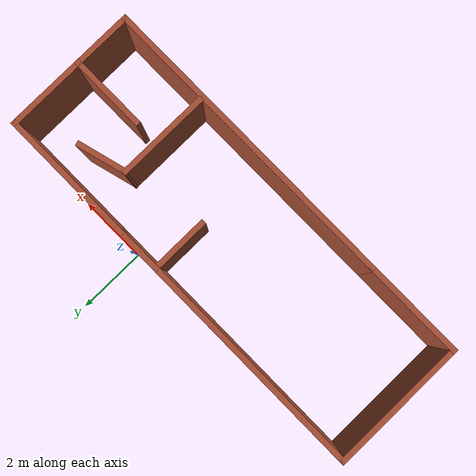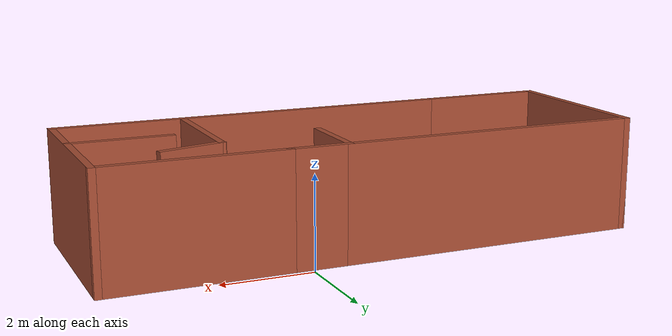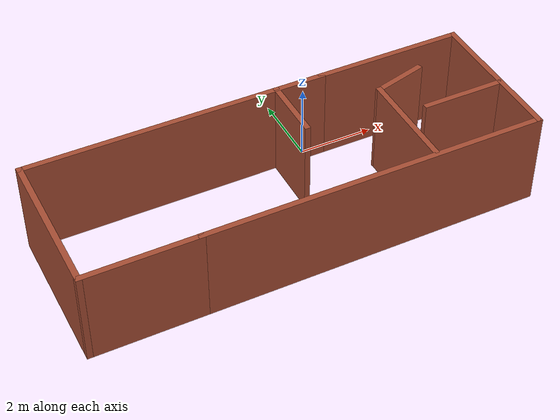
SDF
<?xml version='1.0'?>
<sdf version='1.6'>
  <model name='112'>
    <pose frame=''>-1.57 -2.105 0 0 -0 0</pose>
    <link name='Wall_10'>
      <collision name='Wall_10_Collision'>
        <geometry>
          <box>
            <size>4 0.15 2.5</size>
          </box>
        </geometry>
        <pose frame=''>0 0 1.25 0 -0 0</pose>
      </collision>
      <visual name='Wall_10_Visual'>
        <pose frame=''>0 0 1.25 0 -0 0</pose>
        <geometry>
          <box>
            <size>4 0.15 2.5</size>
          </box>
        </geometry>
        <material>
          <script>
            <uri>file://media/materials/scripts/gazebo.material</uri>
            <name>Gazebo/Bricks</name>
          </script>
          <ambient>1 1 1 1</ambient>
        </material>
      </visual>
      <pose frame=''>5.85 0 0 0 -0 1.5708</pose>
    </link>
    <link name='Wall_12'>
      <collision name='Wall_12_Collision'>
        <geometry>
          <box>
            <size>4 0.15 2.5</size>
          </box>
        </geometry>
        <pose frame=''>0 0 1.25 0 -0 0</pose>
      </collision>
      <visual name='Wall_12_Visual'>
        <pose frame=''>0 0 1.25 0 -0 0</pose>
        <geometry>
          <box>
            <size>4 0.15 2.5</size>
          </box>
        </geometry>
        <material>
          <script>
            <uri>file://media/materials/scripts/gazebo.material</uri>
            <name>Gazebo/Bricks</name>
          </script>
          <ambient>1 1 1 1</ambient>
        </material>
      </visual>
      <pose frame=''>3.925 1.925 0 0 -0 3.14159</pose>
    </link>
    <link name='Wall_13'>
      <collision name='Wall_13_Collision'>
        <geometry>
          <box>
            <size>1.4 0.15 2.5</size>
          </box>
        </geometry>
        <pose frame=''>0 0 1.25 0 -0 0</pose>
      </collision>
      <visual name='Wall_13_Visual'>
        <pose frame=''>0 0 1.25 0 -0 0</pose>
        <geometry>
          <box>
            <size>1.4 0.15 2.5</size>
          </box>
        </geometry>
        <material>
          <script>
            <uri>file://media/materials/scripts/gazebo.material</uri>
            <name>Gazebo/Bricks</name>
          </script>
          <ambient>1 1 1 1</ambient>
        </material>
      </visual>
      <pose frame=''>1.375 1.925 0 0 0 -3.14159</pose>
    </link>
    <link name='Wall_15'>
      <collision name='Wall_15_Collision'>
        <geometry>
          <box>
            <size>2.75 0.15 2.5</size>
          </box>
        </geometry>
        <pose frame=''>0 0 1.25 0 -0 0</pose>
      </collision>
      <visual name='Wall_15_Visual'>
        <pose frame=''>0 0 1.25 0 -0 0</pose>
        <geometry>
          <box>
            <size>2.75 0.15 2.5</size>
          </box>
        </geometry>
        <material>
          <script>
            <uri>file://media/materials/scripts/gazebo.material</uri>
            <name>Gazebo/Bricks</name>
          </script>
          <ambient>1 1 1 1</ambient>
        </material>
      </visual>
      <pose frame=''>3.02 -0.515 0 0 0 -1.5708</pose>
    </link>
    <link name='Wall_17'>
      <collision name='Wall_17_Collision'>
        <geometry>
          <box>
            <size>2.25 0.15 2.5</size>
          </box>
        </geometry>
        <pose frame=''>0 0 1.25 0 -0 0</pose>
      </collision>
      <visual name='Wall_17_Visual'>
        <pose frame=''>0 0 1.25 0 -0 0</pose>
        <geometry>
          <box>
            <size>2.25 0.15 2.5</size>
          </box>
        </geometry>
        <material>
          <script>
            <uri>file://media/materials/scripts/gazebo.material</uri>
            <name>Gazebo/Bricks</name>
          </script>
          <ambient>1 1 1 1</ambient>
        </material>
      </visual>
      <pose frame=''>4.78 -0.285 0 0 -0 0</pose>
    </link>
    <link name='Wall_19'>
      <collision name='Wall_19_Collision'>
        <geometry>
          <box>
            <size>1.5 0.15 2.5</size>
          </box>
        </geometry>
        <pose frame=''>0 0 1.25 0 -0 0</pose>
      </collision>
      <visual name='Wall_19_Visual'>
        <pose frame=''>0 0 1.25 0 -0 0</pose>
        <geometry>
          <box>
            <size>1.5 0.15 2.5</size>
          </box>
        </geometry>
        <material>
          <script>
            <uri>file://media/materials/scripts/gazebo.material</uri>
            <name>Gazebo/Bricks</name>
          </script>
          <ambient>1 1 1 1</ambient>
        </material>
      </visual>
      <pose frame=''>3.672 0.959703 0 0 -0 0.261799</pose>
    </link>
    <link name='Wall_3'>
      <collision name='Wall_3_Collision'>
        <geometry>
          <box>
            <size>9 0.15 2.5</size>
          </box>
        </geometry>
        <pose frame=''>0 0 1.25 0 -0 0</pose>
      </collision>
      <visual name='Wall_3_Visual'>
        <pose frame=''>0 0 1.25 0 -0 0</pose>
        <geometry>
          <box>
            <size>9 0.15 2.5</size>
          </box>
        </geometry>
        <material>
          <script>
            <uri>file://media/materials/scripts/gazebo.material</uri>
            <name>Gazebo/Bricks</name>
          </script>
          <ambient>1 1 1 1</ambient>
        </material>
      </visual>
      <pose frame=''>1.425 -1.925 0 0 -0 3.14159</pose>
    </link>
    <link name='Wall_4'>
      <collision name='Wall_4_Collision'>
        <geometry>
          <box>
            <size>3 0.15 2.5</size>
          </box>
        </geometry>
        <pose frame=''>0 0 1.25 0 -0 0</pose>
      </collision>
      <visual name='Wall_4_Visual'>
        <pose frame=''>0 0 1.25 0 -0 0</pose>
        <geometry>
          <box>
            <size>3 0.15 2.5</size>
          </box>
        </geometry>
        <material>
          <script>
            <uri>file://media/materials/scripts/gazebo.material</uri>
            <name>Gazebo/Bricks</name>
          </script>
          <ambient>1 1 1 1</ambient>
        </material>
      </visual>
      <pose frame=''>-4.425 -1.925 0 0 -0 3.14159</pose>
    </link>
    <link name='Wall_5'>
      <collision name='Wall_5_Collision'>
        <geometry>
          <box>
            <size>4 0.15 2.5</size>
          </box>
        </geometry>
        <pose frame=''>0 0 1.25 0 -0 0</pose>
      </collision>
      <visual name='Wall_5_Visual'>
        <pose frame=''>0 0 1.25 0 -0 0</pose>
        <geometry>
          <box>
            <size>4 0.15 2.5</size>
          </box>
        </geometry>
        <material>
          <script>
            <uri>file://media/materials/scripts/gazebo.material</uri>
            <name>Gazebo/Bricks</name>
          </script>
          <ambient>1 1 1 1</ambient>
        </material>
      </visual>
      <pose frame=''>-5.85 0 0 0 -0 1.5708</pose>
    </link>
    <link name='Wall_6'>
      <collision name='Wall_6_Collision'>
        <geometry>
          <box>
            <size>6.75 0.15 2.5</size>
          </box>
        </geometry>
        <pose frame=''>0 0 1.25 0 -0 0</pose>
      </collision>
      <visual name='Wall_6_Visual'>
        <pose frame=''>0 0 1.25 0 -0 0</pose>
        <geometry>
          <box>
            <size>6.75 0.15 2.5</size>
          </box>
        </geometry>
        <material>
          <script>
            <uri>file://media/materials/scripts/gazebo.material</uri>
            <name>Gazebo/Bricks</name>
          </script>
          <ambient>1 1 1 1</ambient>
        </material>
      </visual>
      <pose frame=''>-2.55 1.925 0 0 -0 0</pose>
    </link>
    <link name='Wall_7'>
      <collision name='Wall_7_Collision'>
        <geometry>
          <box>
            <size>1.75 0.15 2.5</size>
          </box>
        </geometry>
        <pose frame=''>0 0 1.25 0 -0 0</pose>
      </collision>
      <visual name='Wall_7_Visual'>
        <pose frame=''>0 0 1.25 0 -0 0</pose>
        <geometry>
          <box>
            <size>1.75 0.15 2.5</size>
          </box>
        </geometry>
        <material>
          <script>
            <uri>file://media/materials/scripts/gazebo.material</uri>
            <name>Gazebo/Bricks</name>
          </script>
          <ambient>1 1 1 1</ambient>
        </material>
      </visual>
      <pose frame=''>0.75 1.125 0 0 0 -1.5708</pose>
    </link>
    <static>1</static>
  </model>
</sdf>
